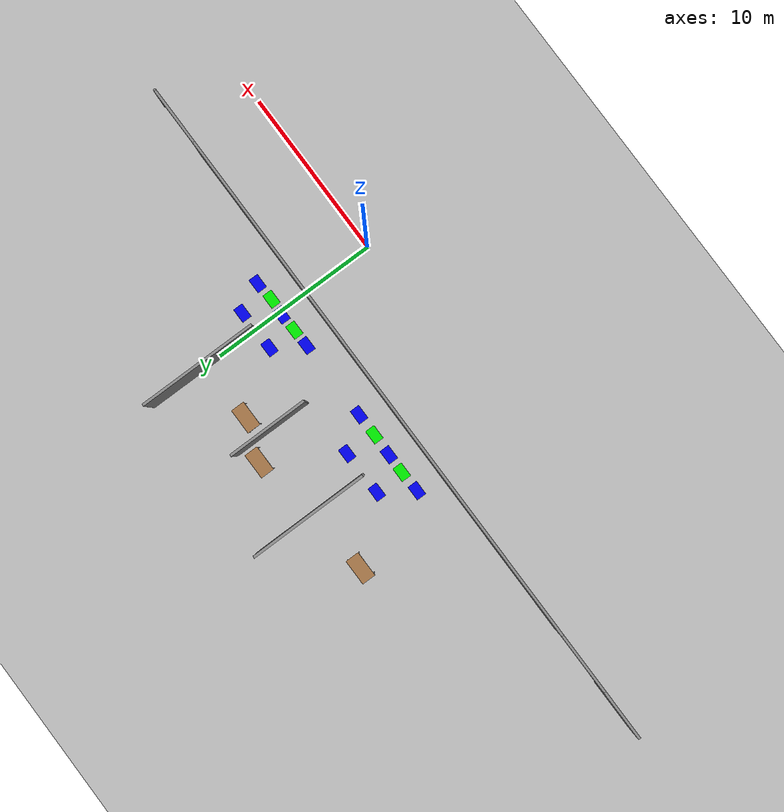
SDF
<sdf version="1.6">
 <world name="default">
  <model name="ground_plane">
   <pose>0 0 0.001 0 -0 0</pose>
   <static>1</static>
   <link name="link">
    <collision name="collision">
     <geometry><plane><normal>0 0 1</normal><size>100 100</size></plane></geometry>
     <surface><friction><ode><mu>100</mu><mu2>50</mu2></ode></friction></surface>
    </collision>
    <visual name="visual">
     <cast_shadows>0</cast_shadows>
     <geometry><plane><normal>0 0 1</normal><size>100 100</size></plane></geometry>
     <material>
      <script><uri>file://media/materials/scripts/gazebo.material</uri><name>Gazebo/Grey</name></script>
     </material>
    </visual>
   </link>
  </model>
  <model name="fin_se1f1.sdf">
   <pose>1.8125 -2.2901 0 0 -0 0</pose>
   <link name="Wall_1">
    <pose>-9.82457 6.52457 0.001 0 -0 0</pose>
    <visual name="Wall_1_Visual_0">
     <pose>-19.528 0 1.25 0 -0 0</pose>
     <geometry><box><size>2.94395 0.15 2.5</size></box></geometry>
     <material>
      <script><uri>file://media/materials/scripts/gazebo.material</uri><name>Gazebo/Grey</name></script>
      <ambient>1 1 1 1</ambient>
     </material>
     <meta><layer>0</layer></meta>
    </visual>
    <collision name="Wall_1_Collision_0">
     <geometry><box><size>2.94395 0.15 2.5</size></box></geometry>
     <pose>-19.528 0 1.25 0 -0 0</pose>
    </collision>
    <visual name="Wall_1_Visual_1">
     <pose>1.49202 0 1.25 0 -0 0</pose>
     <geometry><box><size>31.9924 0.15 2.5</size></box></geometry>
     <material>
      <script><uri>file://media/materials/scripts/gazebo.material</uri><name>Gazebo/Grey</name></script>
      <ambient>1 1 1 1</ambient>
     </material>
     <meta><layer>0</layer></meta>
    </visual>
    <collision name="Wall_1_Collision_1">
     <geometry><box><size>31.9924 0.15 2.5</size></box></geometry>
     <pose>1.49202 0 1.25 0 -0 0</pose>
    </collision>
    <visual name="Wall_1_Visual_2">
     <pose>20.9503 0 1.25 0 -0 0</pose>
     <geometry><box><size>0.099489 0.15 2.5</size></box></geometry>
     <material>
      <script><uri>file://media/materials/scripts/gazebo.material</uri><name>Gazebo/Grey</name></script>
      <ambient>1 1 1 1</ambient>
     </material>
     <meta><layer>0</layer></meta>
    </visual>
    <collision name="Wall_1_Collision_2">
     <geometry><box><size>0.099489 0.15 2.5</size></box></geometry>
     <pose>20.9503 0 1.25 0 -0 0</pose>
    </collision>
    <visual name="Wall_1_Visual_3">
     <pose>-16.2801 0 2.25 0 -0 0</pose>
     <geometry><box><size>3.55186 0.15 0.5</size></box></geometry>
     <material>
      <script><uri>file://media/materials/scripts/gazebo.material</uri><name>Gazebo/Grey</name></script>
      <ambient>1 1 1 1</ambient>
     </material>
     <meta><layer>0</layer></meta>
    </visual>
    <collision name="Wall_1_Collision_3">
     <geometry><box><size>3.55186 0.15 0.5</size></box></geometry>
     <pose>-16.2801 0 2.25 0 -0 0</pose>
    </collision>
    <visual name="Wall_1_Visual_4">
     <pose>19.1944 0 2.25 0 -0 0</pose>
     <geometry><box><size>3.41229 0.15 0.5</size></box></geometry>
     <material>
      <script><uri>file://media/materials/scripts/gazebo.material</uri><name>Gazebo/Grey</name></script>
      <ambient>1 1 1 1</ambient>
     </material>
     <meta><layer>0</layer></meta>
    </visual>
    <collision name="Wall_1_Collision_4">
     <geometry><box><size>3.41229 0.15 0.5</size></box></geometry>
     <pose>19.1944 0 2.25 0 -0 0</pose>
    </collision>
   </link>
   <link name="Wall_104">
    <collision name="Wall_104_Collision">
     <geometry><box><size>7 0.15 2.5</size></box></geometry>
     <pose>0 0 1.25 0 -0 0</pose>
    </collision>
    <visual name="Wall_104_Visual">
     <pose>0 0 1.25 0 -0 0</pose>
     <geometry><box><size>7 0.15 2.5</size></box></geometry>
     <material>
      <script><uri>file://media/materials/scripts/gazebo.material</uri><name>Gazebo/Grey</name></script>
      <ambient>1 1 1 1</ambient>
     </material>
     <meta><layer>0</layer></meta>
    </visual>
    <pose>-11.6118 13.3512 0 0 0 -1.5708</pose>
   </link>
   <link name="Wall_108">
    <collision name="Wall_108_Collision">
     <geometry><box><size>7 0.15 2.5</size></box></geometry>
     <pose>0 0 1.25 0 -0 0</pose>
    </collision>
    <visual name="Wall_108_Visual">
     <pose>0 0 1.25 0 -0 0</pose>
     <geometry><box><size>7 0.15 2.5</size></box></geometry>
     <material>
      <script><uri>file://media/materials/scripts/gazebo.material</uri><name>Gazebo/Grey</name></script>
      <ambient>1 1 1 1</ambient>
     </material>
     <meta><layer>0</layer></meta>
    </visual>
    <pose>-1.87432 13.2994 0 0 -0 1.5708</pose>
   </link>
   <link name="Wall_112">
    <collision name="Wall_112_Collision">
     <geometry><box><size>4.75 0.15 2.5</size></box></geometry>
     <pose>0 0 1.25 0 -0 0</pose>
    </collision>
    <visual name="Wall_112_Visual">
     <pose>0 0 1.25 0 -0 0</pose>
     <geometry><box><size>4.75 0.15 2.5</size></box></geometry>
     <material>
      <script><uri>file://media/materials/scripts/gazebo.material</uri><name>Gazebo/Grey</name></script>
      <ambient>1 1 1 1</ambient>
     </material>
     <meta><layer>0</layer></meta>
    </visual>
    <pose>-6.68954 12.3361 0 0 0 -1.5708</pose>
   </link>
   <static>1</static>
  </model>
  <model name="table_3">
   <static>1</static>
   <link name="link">
    <collision name="surface">
     <pose>0 0 1 0 -0 0</pose>
     <geometry><box><size>1.5 0.8 0.03</size></box></geometry>
     <surface><friction><ode><mu>0.6</mu><mu2>0.6</mu2></ode></friction></surface>
    </collision>
    <visual name="visual1">
     <pose>0 0 1 0 -0 0</pose>
     <geometry><box><size>1.5 0.8 0.03</size></box></geometry>
     <material>
      <script><uri>file://media/materials/scripts/gazebo.material</uri><name>Gazebo/Wood</name></script>
     </material>
    </visual>
    <collision name="front_left_leg">
     <pose>0.68 0.38 0.5 0 -0 0</pose>
     <geometry><cylinder><radius>0.02</radius><length>1</length></cylinder></geometry>
    </collision>
    <visual name="front_left_leg">
     <pose>0.68 0.38 0.5 0 -0 0</pose>
     <geometry><cylinder><radius>0.02</radius><length>1</length></cylinder></geometry>
     <material>
      <script><uri>file://media/materials/scripts/gazebo.material</uri><name>Gazebo/Grey</name></script>
     </material>
    </visual>
    <collision name="front_right_leg">
     <pose>0.68 -0.38 0.5 0 -0 0</pose>
     <geometry><cylinder><radius>0.02</radius><length>1</length></cylinder></geometry>
    </collision>
    <visual name="front_right_leg">
     <pose>0.68 -0.38 0.5 0 -0 0</pose>
     <geometry><cylinder><radius>0.02</radius><length>1</length></cylinder></geometry>
     <material>
      <script><uri>file://media/materials/scripts/gazebo.material</uri><name>Gazebo/Grey</name></script>
     </material>
    </visual>
    <collision name="back_right_leg">
     <pose>-0.68 -0.38 0.5 0 -0 0</pose>
     <geometry><cylinder><radius>0.02</radius><length>1</length></cylinder></geometry>
    </collision>
    <visual name="back_right_leg">
     <pose>-0.68 -0.38 0.5 0 -0 0</pose>
     <geometry><cylinder><radius>0.02</radius><length>1</length></cylinder></geometry>
     <material>
      <script><uri>file://media/materials/scripts/gazebo.material</uri><name>Gazebo/Grey</name></script>
     </material>
    </visual>
    <collision name="back_left_leg">
     <pose>-0.68 0.38 0.5 0 -0 0</pose>
     <geometry><cylinder><radius>0.02</radius><length>1</length></cylinder></geometry>
    </collision>
    <visual name="back_left_leg">
     <pose>-0.68 0.38 0.5 0 -0 0</pose>
     <geometry><cylinder><radius>0.02</radius><length>1</length></cylinder></geometry>
     <material>
      <script><uri>file://media/materials/scripts/gazebo.material</uri><name>Gazebo/Grey</name></script>
     </material>
    </visual>
   </link>
   <pose>-13.669 10.6394 0.001 0 -0 0</pose>
  </model>
  <model name="table_4">
   <static>1</static>
   <link name="link">
    <collision name="surface">
     <pose>0 0 1 0 -0 0</pose>
     <geometry><box><size>1.5 0.8 0.03</size></box></geometry>
     <surface><friction><ode><mu>0.6</mu><mu2>0.6</mu2></ode></friction></surface>
    </collision>
    <visual name="visual1">
     <pose>0 0 1 0 -0 0</pose>
     <geometry><box><size>1.5 0.8 0.03</size></box></geometry>
     <material>
      <script><uri>file://media/materials/scripts/gazebo.material</uri><name>Gazebo/Wood</name></script>
     </material>
    </visual>
    <collision name="front_left_leg">
     <pose>0.68 0.38 0.5 0 -0 0</pose>
     <geometry><cylinder><radius>0.02</radius><length>1</length></cylinder></geometry>
    </collision>
    <visual name="front_left_leg">
     <pose>0.68 0.38 0.5 0 -0 0</pose>
     <geometry><cylinder><radius>0.02</radius><length>1</length></cylinder></geometry>
     <material>
      <script><uri>file://media/materials/scripts/gazebo.material</uri><name>Gazebo/Grey</name></script>
     </material>
    </visual>
    <collision name="front_right_leg">
     <pose>0.68 -0.38 0.5 0 -0 0</pose>
     <geometry><cylinder><radius>0.02</radius><length>1</length></cylinder></geometry>
    </collision>
    <visual name="front_right_leg">
     <pose>0.68 -0.38 0.5 0 -0 0</pose>
     <geometry><cylinder><radius>0.02</radius><length>1</length></cylinder></geometry>
     <material>
      <script><uri>file://media/materials/scripts/gazebo.material</uri><name>Gazebo/Grey</name></script>
     </material>
    </visual>
    <collision name="back_right_leg">
     <pose>-0.68 -0.38 0.5 0 -0 0</pose>
     <geometry><cylinder><radius>0.02</radius><length>1</length></cylinder></geometry>
    </collision>
    <visual name="back_right_leg">
     <pose>-0.68 -0.38 0.5 0 -0 0</pose>
     <geometry><cylinder><radius>0.02</radius><length>1</length></cylinder></geometry>
     <material>
      <script><uri>file://media/materials/scripts/gazebo.material</uri><name>Gazebo/Grey</name></script>
     </material>
    </visual>
    <collision name="back_left_leg">
     <pose>-0.68 0.38 0.5 0 -0 0</pose>
     <geometry><cylinder><radius>0.02</radius><length>1</length></cylinder></geometry>
    </collision>
    <visual name="back_left_leg">
     <pose>-0.68 0.38 0.5 0 -0 0</pose>
     <geometry><cylinder><radius>0.02</radius><length>1</length></cylinder></geometry>
     <material>
      <script><uri>file://media/materials/scripts/gazebo.material</uri><name>Gazebo/Grey</name></script>
     </material>
    </visual>
   </link>
   <pose>-5.96358 11.6077 0.001 0 -0 0</pose>
  </model>
  <model name="table_7">
   <static>1</static>
   <link name="link">
    <collision name="surface">
     <pose>0 0 1 0 -0 0</pose>
     <geometry><box><size>1.5 0.8 0.03</size></box></geometry>
     <surface><friction><ode><mu>0.6</mu><mu2>0.6</mu2></ode></friction></surface>
    </collision>
    <visual name="visual1">
     <pose>0 0 1 0 -0 0</pose>
     <geometry><box><size>1.5 0.8 0.03</size></box></geometry>
     <material>
      <script><uri>file://media/materials/scripts/gazebo.material</uri><name>Gazebo/Wood</name></script>
     </material>
    </visual>
    <collision name="front_left_leg">
     <pose>0.68 0.38 0.5 0 -0 0</pose>
     <geometry><cylinder><radius>0.02</radius><length>1</length></cylinder></geometry>
    </collision>
    <visual name="front_left_leg">
     <pose>0.68 0.38 0.5 0 -0 0</pose>
     <geometry><cylinder><radius>0.02</radius><length>1</length></cylinder></geometry>
     <material>
      <script><uri>file://media/materials/scripts/gazebo.material</uri><name>Gazebo/Grey</name></script>
     </material>
    </visual>
    <collision name="front_right_leg">
     <pose>0.68 -0.38 0.5 0 -0 0</pose>
     <geometry><cylinder><radius>0.02</radius><length>1</length></cylinder></geometry>
    </collision>
    <visual name="front_right_leg">
     <pose>0.68 -0.38 0.5 0 -0 0</pose>
     <geometry><cylinder><radius>0.02</radius><length>1</length></cylinder></geometry>
     <material>
      <script><uri>file://media/materials/scripts/gazebo.material</uri><name>Gazebo/Grey</name></script>
     </material>
    </visual>
    <collision name="back_right_leg">
     <pose>-0.68 -0.38 0.5 0 -0 0</pose>
     <geometry><cylinder><radius>0.02</radius><length>1</length></cylinder></geometry>
    </collision>
    <visual name="back_right_leg">
     <pose>-0.68 -0.38 0.5 0 -0 0</pose>
     <geometry><cylinder><radius>0.02</radius><length>1</length></cylinder></geometry>
     <material>
      <script><uri>file://media/materials/scripts/gazebo.material</uri><name>Gazebo/Grey</name></script>
     </material>
    </visual>
    <collision name="back_left_leg">
     <pose>-0.68 0.38 0.5 0 -0 0</pose>
     <geometry><cylinder><radius>0.02</radius><length>1</length></cylinder></geometry>
    </collision>
    <visual name="back_left_leg">
     <pose>-0.68 0.38 0.5 0 -0 0</pose>
     <geometry><cylinder><radius>0.02</radius><length>1</length></cylinder></geometry>
     <material>
      <script><uri>file://media/materials/scripts/gazebo.material</uri><name>Gazebo/Grey</name></script>
     </material>
    </visual>
   </link>
   <pose>-3.62145 10.7656 0.001 0 -0 0</pose>
  </model>
  <model name="corridor_14">
   <link name="link">
    <pose>0 0 0.001 0 -0 0</pose>
    <inertial>
     <mass>0.0352517</mass>
     <inertia>
      <ixx>0.00099707</ixx>
      <ixy>0</ixy>
      <ixz>0</ixz>
      <iyy>0.00220147</iyy>
      <iyz>0</iyz>
      <izz>0.0031692</izz>
     </inertia>
     <pose>0 0 0.001 0 -0 0</pose>
    </inertial>
    <visual name="visual">
     <geometry><box><size>0.862743 0.578289 1e-06</size></box></geometry>
     <material>
      <script><name>Gazebo/Grey</name><uri>file://media/materials/scripts/gazebo.material</uri></script>
      <ambient>0 1 0 1</ambient>
      <diffuse>0 1 0 1</diffuse>
      <specular>0 1 0 1</specular>
      <emissive>0 1 0 1</emissive>
      <shader type="vertex"><normal_map>__default__</normal_map></shader>
     </material>
     <pose>0 0 0.001 0 -0 0</pose>
    </visual>
    <collision name="collision">
     <pose>0 0 0.001 0 -0 0</pose>
     <geometry><box><size>0.862743 0.578289 0.000477</size></box></geometry>
     <surface>
      <friction>
       <ode><mu>1</mu><mu2>1</mu2><fdir1>0 0 0</fdir1><slip1>0</slip1><slip2>0</slip2></ode>
       <torsional>
        <coefficient>1</coefficient>
        <patch_radius>0</patch_radius>
        <surface_radius>0</surface_radius>
        <use_patch_radius>1</use_patch_radius>
        <ode><slip>0</slip></ode>
       </torsional>
      </friction>
      <bounce><restitution_coefficient>0</restitution_coefficient><threshold>1e+06</threshold></bounce>
      <contact>
       <collide_without_contact>0</collide_without_contact>
       <collide_without_contact_bitmask>1</collide_without_contact_bitmask>
       <collide_bitmask>1</collide_bitmask>
       <ode>
        <soft_cfm>0</soft_cfm>
        <soft_erp>0.2</soft_erp>
        <kp>1e+13</kp>
        <kd>1</kd>
        <max_vel>0.01</max_vel>
        <min_depth>0</min_depth>
       </ode>
       <bullet>
        <split_impulse>1</split_impulse>
        <split_impulse_penetration_threshold>-0.01</split_impulse_penetration_threshold>
        <soft_cfm>0</soft_cfm>
        <soft_erp>0.2</soft_erp>
        <kp>1e+13</kp>
        <kd>1</kd>
       </bullet>
      </contact>
     </surface>
    </collision>
   </link>
   <static>1</static>
   <pose>0.836672 5.91312 0 0 -0 0</pose>
  </model>
  <model name="intersection_24">
   <link name="link">
    <pose>0 0 0.001 0 -0 0</pose>
    <inertial>
     <mass>0.0352517</mass>
     <inertia>
      <ixx>0.000997067</ixx>
      <ixy>0</ixy>
      <ixz>0</ixz>
      <iyy>0.00220147</iyy>
      <iyz>0</iyz>
      <izz>0.0031692</izz>
     </inertia>
     <pose>0 0 0.001 0 -0 0</pose>
    </inertial>
    <visual name="visual">
     <geometry><box><size>0.862743 0.578289 1e-06</size></box></geometry>
     <material>
      <script><name>Gazebo/Grey</name><uri>file://media/materials/scripts/gazebo.material</uri></script>
      <ambient>0 0 1 1</ambient>
      <diffuse>0 0 1 1</diffuse>
      <specular>0 0 1 1</specular>
      <emissive>0 0 1 1</emissive>
      <shader type="vertex"><normal_map>__default__</normal_map></shader>
     </material>
     <pose>0 0 0.001 0 -0 0</pose>
    </visual>
    <collision name="collision">
     <pose>0 0 0.001 0 -0 0</pose>
     <geometry><box><size>0.862743 0.578289 0.000477</size></box></geometry>
     <surface>
      <friction>
       <ode><mu>1</mu><mu2>1</mu2><fdir1>0 0 0</fdir1><slip1>0</slip1><slip2>0</slip2></ode>
       <torsional>
        <coefficient>1</coefficient>
        <patch_radius>0</patch_radius>
        <surface_radius>0</surface_radius>
        <use_patch_radius>1</use_patch_radius>
        <ode><slip>0</slip></ode>
       </torsional>
      </friction>
      <bounce><restitution_coefficient>0</restitution_coefficient><threshold>1e+06</threshold></bounce>
      <contact>
       <collide_without_contact>0</collide_without_contact>
       <collide_without_contact_bitmask>1</collide_without_contact_bitmask>
       <collide_bitmask>1</collide_bitmask>
       <ode>
        <soft_cfm>0</soft_cfm>
        <soft_erp>0.2</soft_erp>
        <kp>1e+13</kp>
        <kd>1</kd>
        <max_vel>0.01</max_vel>
        <min_depth>0</min_depth>
       </ode>
       <bullet>
        <split_impulse>1</split_impulse>
        <split_impulse_penetration_threshold>-0.01</split_impulse_penetration_threshold>
        <soft_cfm>0</soft_cfm>
        <soft_erp>0.2</soft_erp>
        <kp>1e+13</kp>
        <kd>1</kd>
       </bullet>
      </contact>
     </surface>
    </collision>
   </link>
   <static>1</static>
   <pose>1.17098 7.63734 0 0 -0 0</pose>
  </model>
  <model name="corridor_15">
   <link name="link">
    <pose>0 0 0.001 0 -0 0</pose>
    <inertial>
     <mass>0.0352517</mass>
     <inertia>
      <ixx>0.00099707</ixx>
      <ixy>0</ixy>
      <ixz>0</ixz>
      <iyy>0.00220147</iyy>
      <iyz>0</iyz>
      <izz>0.0031692</izz>
     </inertia>
     <pose>0 0 0.001 0 -0 0</pose>
    </inertial>
    <visual name="visual">
     <geometry><box><size>0.862743 0.578289 1e-06</size></box></geometry>
     <material>
      <script><name>Gazebo/Grey</name><uri>file://media/materials/scripts/gazebo.material</uri></script>
      <ambient>0 1 0 1</ambient>
      <diffuse>0 1 0 1</diffuse>
      <specular>0 1 0 1</specular>
      <emissive>0 1 0 1</emissive>
      <shader type="vertex"><normal_map>__default__</normal_map></shader>
     </material>
     <pose>0 0 0.001 0 -0 0</pose>
    </visual>
    <collision name="collision">
     <pose>0 0 0.001 0 -0 0</pose>
     <geometry><box><size>0.862743 0.578289 0.000477</size></box></geometry>
     <surface>
      <friction>
       <ode><mu>1</mu><mu2>1</mu2><fdir1>0 0 0</fdir1><slip1>0</slip1><slip2>0</slip2></ode>
       <torsional>
        <coefficient>1</coefficient>
        <patch_radius>0</patch_radius>
        <surface_radius>0</surface_radius>
        <use_patch_radius>1</use_patch_radius>
        <ode><slip>0</slip></ode>
       </torsional>
      </friction>
      <bounce><restitution_coefficient>0</restitution_coefficient><threshold>1e+06</threshold></bounce>
      <contact>
       <collide_without_contact>0</collide_without_contact>
       <collide_without_contact_bitmask>1</collide_without_contact_bitmask>
       <collide_bitmask>1</collide_bitmask>
       <ode>
        <soft_cfm>0</soft_cfm>
        <soft_erp>0.2</soft_erp>
        <kp>1e+13</kp>
        <kd>1</kd>
        <max_vel>0.01</max_vel>
        <min_depth>0</min_depth>
       </ode>
       <bullet>
        <split_impulse>1</split_impulse>
        <split_impulse_penetration_threshold>-0.01</split_impulse_penetration_threshold>
        <soft_cfm>0</soft_cfm>
        <soft_erp>0.2</soft_erp>
        <kp>1e+13</kp>
        <kd>1</kd>
       </bullet>
      </contact>
     </surface>
    </collision>
   </link>
   <static>1</static>
   <pose>-1.26953 5.9228 0 0 -0 0</pose>
  </model>
  <model name="intersection_25">
   <link name="link">
    <pose>0 0 0.001 0 -0 0</pose>
    <inertial>
     <mass>0.0352517</mass>
     <inertia>
      <ixx>0.000997067</ixx>
      <ixy>0</ixy>
      <ixz>0</ixz>
      <iyy>0.00220147</iyy>
      <iyz>0</iyz>
      <izz>0.0031692</izz>
     </inertia>
     <pose>0 0 0.001 0 -0 0</pose>
    </inertial>
    <visual name="visual">
     <geometry><box><size>0.862743 0.578289 1e-06</size></box></geometry>
     <material>
      <script><name>Gazebo/Grey</name><uri>file://media/materials/scripts/gazebo.material</uri></script>
      <ambient>0 0 1 1</ambient>
      <diffuse>0 0 1 1</diffuse>
      <specular>0 0 1 1</specular>
      <emissive>0 0 1 1</emissive>
      <shader type="vertex"><normal_map>__default__</normal_map></shader>
     </material>
     <pose>0 0 0.001 0 -0 0</pose>
    </visual>
    <collision name="collision">
     <pose>0 0 0.001 0 -0 0</pose>
     <geometry><box><size>0.862743 0.578289 0.000477</size></box></geometry>
     <surface>
      <friction>
       <ode><mu>1</mu><mu2>1</mu2><fdir1>0 0 0</fdir1><slip1>0</slip1><slip2>0</slip2></ode>
       <torsional>
        <coefficient>1</coefficient>
        <patch_radius>0</patch_radius>
        <surface_radius>0</surface_radius>
        <use_patch_radius>1</use_patch_radius>
        <ode><slip>0</slip></ode>
       </torsional>
      </friction>
      <bounce><restitution_coefficient>0</restitution_coefficient><threshold>1e+06</threshold></bounce>
      <contact>
       <collide_without_contact>0</collide_without_contact>
       <collide_without_contact_bitmask>1</collide_without_contact_bitmask>
       <collide_bitmask>1</collide_bitmask>
       <ode>
        <soft_cfm>0</soft_cfm>
        <soft_erp>0.2</soft_erp>
        <kp>1e+13</kp>
        <kd>1</kd>
        <max_vel>0.01</max_vel>
        <min_depth>0</min_depth>
       </ode>
       <bullet>
        <split_impulse>1</split_impulse>
        <split_impulse_penetration_threshold>-0.01</split_impulse_penetration_threshold>
        <soft_cfm>0</soft_cfm>
        <soft_erp>0.2</soft_erp>
        <kp>1e+13</kp>
        <kd>1</kd>
       </bullet>
      </contact>
     </surface>
    </collision>
   </link>
   <static>1</static>
   <pose>-1.23089 7.58219 0 0 -0 0</pose>
  </model>
  <model name="corridor_16">
   <link name="link">
    <pose>0 0 0.001 0 -0 0</pose>
    <inertial>
     <mass>0.0352517</mass>
     <inertia>
      <ixx>0.00099707</ixx>
      <ixy>0</ixy>
      <ixz>0</ixz>
      <iyy>0.00220147</iyy>
      <iyz>0</iyz>
      <izz>0.0031692</izz>
     </inertia>
     <pose>0 0 0.001 0 -0 0</pose>
    </inertial>
    <visual name="visual">
     <geometry><box><size>0.862743 0.578289 1e-06</size></box></geometry>
     <material>
      <script><name>Gazebo/Grey</name><uri>file://media/materials/scripts/gazebo.material</uri></script>
      <ambient>0 1 0 1</ambient>
      <diffuse>0 1 0 1</diffuse>
      <specular>0 1 0 1</specular>
      <emissive>0 1 0 1</emissive>
      <shader type="vertex"><normal_map>__default__</normal_map></shader>
     </material>
     <pose>0 0 0.001 0 -0 0</pose>
    </visual>
    <collision name="collision">
     <pose>0 0 0.001 0 -0 0</pose>
     <geometry><box><size>0.862743 0.578289 0.000477</size></box></geometry>
     <surface>
      <friction>
       <ode><mu>1</mu><mu2>1</mu2><fdir1>0 0 0</fdir1><slip1>0</slip1><slip2>0</slip2></ode>
       <torsional>
        <coefficient>1</coefficient>
        <patch_radius>0</patch_radius>
        <surface_radius>0</surface_radius>
        <use_patch_radius>1</use_patch_radius>
        <ode><slip>0</slip></ode>
       </torsional>
      </friction>
      <bounce><restitution_coefficient>0</restitution_coefficient><threshold>1e+06</threshold></bounce>
      <contact>
       <collide_without_contact>0</collide_without_contact>
       <collide_without_contact_bitmask>1</collide_without_contact_bitmask>
       <collide_bitmask>1</collide_bitmask>
       <ode>
        <soft_cfm>0</soft_cfm>
        <soft_erp>0.2</soft_erp>
        <kp>1e+13</kp>
        <kd>1</kd>
        <max_vel>0.01</max_vel>
        <min_depth>0</min_depth>
       </ode>
       <bullet>
        <split_impulse>1</split_impulse>
        <split_impulse_penetration_threshold>-0.01</split_impulse_penetration_threshold>
        <soft_cfm>0</soft_cfm>
        <soft_erp>0.2</soft_erp>
        <kp>1e+13</kp>
        <kd>1</kd>
       </bullet>
      </contact>
     </surface>
    </collision>
   </link>
   <static>1</static>
   <pose>-8.44268 5.83848 0 0 -0 0</pose>
  </model>
  <model name="intersection_26">
   <link name="link">
    <pose>0 0 0.001 0 -0 0</pose>
    <inertial>
     <mass>0.0352517</mass>
     <inertia>
      <ixx>0.000997067</ixx>
      <ixy>0</ixy>
      <ixz>0</ixz>
      <iyy>0.00220147</iyy>
      <iyz>0</iyz>
      <izz>0.0031692</izz>
     </inertia>
     <pose>0 0 0.001 0 -0 0</pose>
    </inertial>
    <visual name="visual">
     <geometry><box><size>0.862743 0.578289 1e-06</size></box></geometry>
     <material>
      <script><name>Gazebo/Grey</name><uri>file://media/materials/scripts/gazebo.material</uri></script>
      <ambient>0 0 1 1</ambient>
      <diffuse>0 0 1 1</diffuse>
      <specular>0 0 1 1</specular>
      <emissive>0 0 1 1</emissive>
      <shader type="vertex"><normal_map>__default__</normal_map></shader>
     </material>
     <pose>0 0 0.001 0 -0 0</pose>
    </visual>
    <collision name="collision">
     <pose>0 0 0.001 0 -0 0</pose>
     <geometry><box><size>0.862743 0.578289 0.000477</size></box></geometry>
     <surface>
      <friction>
       <ode><mu>1</mu><mu2>1</mu2><fdir1>0 0 0</fdir1><slip1>0</slip1><slip2>0</slip2></ode>
       <torsional>
        <coefficient>1</coefficient>
        <patch_radius>0</patch_radius>
        <surface_radius>0</surface_radius>
        <use_patch_radius>1</use_patch_radius>
        <ode><slip>0</slip></ode>
       </torsional>
      </friction>
      <bounce><restitution_coefficient>0</restitution_coefficient><threshold>1e+06</threshold></bounce>
      <contact>
       <collide_without_contact>0</collide_without_contact>
       <collide_without_contact_bitmask>1</collide_without_contact_bitmask>
       <collide_bitmask>1</collide_bitmask>
       <ode>
        <soft_cfm>0</soft_cfm>
        <soft_erp>0.2</soft_erp>
        <kp>1e+13</kp>
        <kd>1</kd>
        <max_vel>0.01</max_vel>
        <min_depth>0</min_depth>
       </ode>
       <bullet>
        <split_impulse>1</split_impulse>
        <split_impulse_penetration_threshold>-0.01</split_impulse_penetration_threshold>
        <soft_cfm>0</soft_cfm>
        <soft_erp>0.2</soft_erp>
        <kp>1e+13</kp>
        <kd>1</kd>
       </bullet>
      </contact>
     </surface>
    </collision>
   </link>
   <static>1</static>
   <pose>-8.37543 7.62641 0 0 -0 0</pose>
  </model>
  <model name="corridor_17">
   <link name="link">
    <pose>0 0 0.001 0 -0 0</pose>
    <inertial>
     <mass>0.0352517</mass>
     <inertia>
      <ixx>0.00099707</ixx>
      <ixy>0</ixy>
      <ixz>0</ixz>
      <iyy>0.00220147</iyy>
      <iyz>0</iyz>
      <izz>0.0031692</izz>
     </inertia>
     <pose>0 0 0.001 0 -0 0</pose>
    </inertial>
    <visual name="visual">
     <geometry><box><size>0.862743 0.578289 1e-06</size></box></geometry>
     <material>
      <script><name>Gazebo/Grey</name><uri>file://media/materials/scripts/gazebo.material</uri></script>
      <ambient>0 1 0 1</ambient>
      <diffuse>0 1 0 1</diffuse>
      <specular>0 1 0 1</specular>
      <emissive>0 1 0 1</emissive>
      <shader type="vertex"><normal_map>__default__</normal_map></shader>
     </material>
     <pose>0 0 0.001 0 -0 0</pose>
    </visual>
    <collision name="collision">
     <pose>0 0 0.001 0 -0 0</pose>
     <geometry><box><size>0.862743 0.578289 0.000477</size></box></geometry>
     <surface>
      <friction>
       <ode><mu>1</mu><mu2>1</mu2><fdir1>0 0 0</fdir1><slip1>0</slip1><slip2>0</slip2></ode>
       <torsional>
        <coefficient>1</coefficient>
        <patch_radius>0</patch_radius>
        <surface_radius>0</surface_radius>
        <use_patch_radius>1</use_patch_radius>
        <ode><slip>0</slip></ode>
       </torsional>
      </friction>
      <bounce><restitution_coefficient>0</restitution_coefficient><threshold>1e+06</threshold></bounce>
      <contact>
       <collide_without_contact>0</collide_without_contact>
       <collide_without_contact_bitmask>1</collide_without_contact_bitmask>
       <collide_bitmask>1</collide_bitmask>
       <ode>
        <soft_cfm>0</soft_cfm>
        <soft_erp>0.2</soft_erp>
        <kp>1e+13</kp>
        <kd>1</kd>
        <max_vel>0.01</max_vel>
        <min_depth>0</min_depth>
       </ode>
       <bullet>
        <split_impulse>1</split_impulse>
        <split_impulse_penetration_threshold>-0.01</split_impulse_penetration_threshold>
        <soft_cfm>0</soft_cfm>
        <soft_erp>0.2</soft_erp>
        <kp>1e+13</kp>
        <kd>1</kd>
       </bullet>
      </contact>
     </surface>
    </collision>
   </link>
   <static>1</static>
   <pose>-10.9538 5.86455 0 0 -0 0</pose>
  </model>
  <model name="intersection_27">
   <link name="link">
    <pose>0 0 0.001 0 -0 0</pose>
    <inertial>
     <mass>0.0352517</mass>
     <inertia>
      <ixx>0.000997067</ixx>
      <ixy>0</ixy>
      <ixz>0</ixz>
      <iyy>0.00220147</iyy>
      <iyz>0</iyz>
      <izz>0.0031692</izz>
     </inertia>
     <pose>0 0 0.001 0 -0 0</pose>
    </inertial>
    <visual name="visual">
     <geometry><box><size>0.862743 0.578289 1e-06</size></box></geometry>
     <material>
      <script><name>Gazebo/Grey</name><uri>file://media/materials/scripts/gazebo.material</uri></script>
      <ambient>0 0 1 1</ambient>
      <diffuse>0 0 1 1</diffuse>
      <specular>0 0 1 1</specular>
      <emissive>0 0 1 1</emissive>
      <shader type="vertex"><normal_map>__default__</normal_map></shader>
     </material>
     <pose>0 0 0.001 0 -0 0</pose>
    </visual>
    <collision name="collision">
     <pose>0 0 0.001 0 -0 0</pose>
     <geometry><box><size>0.862743 0.578289 0.000477</size></box></geometry>
     <surface>
      <friction>
       <ode><mu>1</mu><mu2>1</mu2><fdir1>0 0 0</fdir1><slip1>0</slip1><slip2>0</slip2></ode>
       <torsional>
        <coefficient>1</coefficient>
        <patch_radius>0</patch_radius>
        <surface_radius>0</surface_radius>
        <use_patch_radius>1</use_patch_radius>
        <ode><slip>0</slip></ode>
       </torsional>
      </friction>
      <bounce><restitution_coefficient>0</restitution_coefficient><threshold>1e+06</threshold></bounce>
      <contact>
       <collide_without_contact>0</collide_without_contact>
       <collide_without_contact_bitmask>1</collide_without_contact_bitmask>
       <collide_bitmask>1</collide_bitmask>
       <ode>
        <soft_cfm>0</soft_cfm>
        <soft_erp>0.2</soft_erp>
        <kp>1e+13</kp>
        <kd>1</kd>
        <max_vel>0.01</max_vel>
        <min_depth>0</min_depth>
       </ode>
       <bullet>
        <split_impulse>1</split_impulse>
        <split_impulse_penetration_threshold>-0.01</split_impulse_penetration_threshold>
        <soft_cfm>0</soft_cfm>
        <soft_erp>0.2</soft_erp>
        <kp>1e+13</kp>
        <kd>1</kd>
       </bullet>
      </contact>
     </surface>
    </collision>
   </link>
   <static>1</static>
   <pose>-11.0097 7.58955 0 0 -0 0</pose>
  </model>
  <model name="intersection_43">
   <link name="link">
    <pose>0 0 0.001 0 -0 0</pose>
    <inertial>
     <mass>0.0352517</mass>
     <inertia>
      <ixx>0.000997067</ixx>
      <ixy>0</ixy>
      <ixz>0</ixz>
      <iyy>0.00220147</iyy>
      <iyz>0</iyz>
      <izz>0.0031692</izz>
     </inertia>
     <pose>0 0 0.001 0 -0 0</pose>
    </inertial>
    <visual name="visual">
     <geometry><box><size>0.862743 0.578289 1e-06</size></box></geometry>
     <material>
      <script><name>Gazebo/Grey</name><uri>file://media/materials/scripts/gazebo.material</uri></script>
      <ambient>0 0 1 1</ambient>
      <diffuse>0 0 1 1</diffuse>
      <specular>0 0 1 1</specular>
      <emissive>0 0 1 1</emissive>
      <shader type="vertex"><normal_map>__default__</normal_map></shader>
     </material>
     <pose>0 0 0.001 0 -0 0</pose>
    </visual>
    <collision name="collision">
     <pose>0 0 0.001 0 -0 0</pose>
     <geometry><box><size>0.862743 0.578289 0.000477</size></box></geometry>
     <surface>
      <friction>
       <ode><mu>1</mu><mu2>1</mu2><fdir1>0 0 0</fdir1><slip1>0</slip1><slip2>0</slip2></ode>
       <torsional>
        <coefficient>1</coefficient>
        <patch_radius>0</patch_radius>
        <surface_radius>0</surface_radius>
        <use_patch_radius>1</use_patch_radius>
        <ode><slip>0</slip></ode>
       </torsional>
      </friction>
      <bounce><restitution_coefficient>0</restitution_coefficient><threshold>1e+06</threshold></bounce>
      <contact>
       <collide_without_contact>0</collide_without_contact>
       <collide_without_contact_bitmask>1</collide_without_contact_bitmask>
       <collide_bitmask>1</collide_bitmask>
       <ode>
        <soft_cfm>0</soft_cfm>
        <soft_erp>0.2</soft_erp>
        <kp>1e+13</kp>
        <kd>1</kd>
        <max_vel>0.01</max_vel>
        <min_depth>0</min_depth>
       </ode>
       <bullet>
        <split_impulse>1</split_impulse>
        <split_impulse_penetration_threshold>-0.01</split_impulse_penetration_threshold>
        <soft_cfm>0</soft_cfm>
        <soft_erp>0.2</soft_erp>
        <kp>1e+13</kp>
        <kd>1</kd>
       </bullet>
      </contact>
     </surface>
    </collision>
   </link>
   <static>1</static>
   <pose>-12.2352 5.80021 0 0 -0 0</pose>
  </model>
  <model name="intersection_44">
   <link name="link">
    <pose>0 0 0.001 0 -0 0</pose>
    <inertial>
     <mass>0.0352517</mass>
     <inertia>
      <ixx>0.000997067</ixx>
      <ixy>0</ixy>
      <ixz>0</ixz>
      <iyy>0.00220147</iyy>
      <iyz>0</iyz>
      <izz>0.0031692</izz>
     </inertia>
     <pose>0 0 0.001 0 -0 0</pose>
    </inertial>
    <visual name="visual">
     <geometry><box><size>0.862743 0.578289 1e-06</size></box></geometry>
     <material>
      <script><name>Gazebo/Grey</name><uri>file://media/materials/scripts/gazebo.material</uri></script>
      <ambient>0 0 1 1</ambient>
      <diffuse>0 0 1 1</diffuse>
      <specular>0 0 1 1</specular>
      <emissive>0 0 1 1</emissive>
      <shader type="vertex"><normal_map>__default__</normal_map></shader>
     </material>
     <pose>0 0 0.001 0 -0 0</pose>
    </visual>
    <collision name="collision">
     <pose>0 0 0.001 0 -0 0</pose>
     <geometry><box><size>0.862743 0.578289 0.000477</size></box></geometry>
     <surface>
      <friction>
       <ode><mu>1</mu><mu2>1</mu2><fdir1>0 0 0</fdir1><slip1>0</slip1><slip2>0</slip2></ode>
       <torsional>
        <coefficient>1</coefficient>
        <patch_radius>0</patch_radius>
        <surface_radius>0</surface_radius>
        <use_patch_radius>1</use_patch_radius>
        <ode><slip>0</slip></ode>
       </torsional>
      </friction>
      <bounce><restitution_coefficient>0</restitution_coefficient><threshold>1e+06</threshold></bounce>
      <contact>
       <collide_without_contact>0</collide_without_contact>
       <collide_without_contact_bitmask>1</collide_without_contact_bitmask>
       <collide_bitmask>1</collide_bitmask>
       <ode>
        <soft_cfm>0</soft_cfm>
        <soft_erp>0.2</soft_erp>
        <kp>1e+13</kp>
        <kd>1</kd>
        <max_vel>0.01</max_vel>
        <min_depth>0</min_depth>
       </ode>
       <bullet>
        <split_impulse>1</split_impulse>
        <split_impulse_penetration_threshold>-0.01</split_impulse_penetration_threshold>
        <soft_cfm>0</soft_cfm>
        <soft_erp>0.2</soft_erp>
        <kp>1e+13</kp>
        <kd>1</kd>
       </bullet>
      </contact>
     </surface>
    </collision>
   </link>
   <static>1</static>
   <pose>-9.77897 5.8594 0 0 -0 0</pose>
  </model>
  <model name="intersection">
   <link name="link">
    <pose>0 0 0.001 0 -0 0</pose>
    <inertial>
     <mass>0.0352517</mass>
     <inertia>
      <ixx>0.000997067</ixx>
      <ixy>0</ixy>
      <ixz>0</ixz>
      <iyy>0.00220147</iyy>
      <iyz>0</iyz>
      <izz>0.0031692</izz>
     </inertia>
     <pose>0 0 0.001 0 -0 0</pose>
    </inertial>
    <visual name="visual">
     <geometry><box><size>0.862743 0.578289 1e-06</size></box></geometry>
     <material>
      <script><name>Gazebo/Grey</name><uri>file://media/materials/scripts/gazebo.material</uri></script>
      <ambient>0 0 1 1</ambient>
      <diffuse>0 0 1 1</diffuse>
      <specular>0 0 1 1</specular>
      <emissive>0 0 1 1</emissive>
      <shader type="vertex"><normal_map>__default__</normal_map></shader>
     </material>
     <pose>0 0 0.001 0 -0 0</pose>
    </visual>
    <collision name="collision">
     <pose>0 0 0.001 0 -0 0</pose>
     <geometry><box><size>0.862743 0.578289 0.000477</size></box></geometry>
     <surface>
      <friction>
       <ode><mu>1</mu><mu2>1</mu2><fdir1>0 0 0</fdir1><slip1>0</slip1><slip2>0</slip2></ode>
       <torsional>
        <coefficient>1</coefficient>
        <patch_radius>0</patch_radius>
        <surface_radius>0</surface_radius>
        <use_patch_radius>1</use_patch_radius>
        <ode><slip>0</slip></ode>
       </torsional>
      </friction>
      <bounce><restitution_coefficient>0</restitution_coefficient><threshold>1e+06</threshold></bounce>
      <contact>
       <collide_without_contact>0</collide_without_contact>
       <collide_without_contact_bitmask>1</collide_without_contact_bitmask>
       <collide_bitmask>1</collide_bitmask>
       <ode>
        <soft_cfm>0</soft_cfm>
        <soft_erp>0.2</soft_erp>
        <kp>1e+13</kp>
        <kd>1</kd>
        <max_vel>0.01</max_vel>
        <min_depth>0</min_depth>
       </ode>
       <bullet>
        <split_impulse>1</split_impulse>
        <split_impulse_penetration_threshold>-0.01</split_impulse_penetration_threshold>
        <soft_cfm>0</soft_cfm>
        <soft_erp>0.2</soft_erp>
        <kp>1e+13</kp>
        <kd>1</kd>
       </bullet>
      </contact>
     </surface>
    </collision>
   </link>
   <static>1</static>
   <pose>-7.07396 5.85445 0 0 -0 0</pose>
  </model>
  <model name="intersection_52">
   <link name="link">
    <pose>0 0 0.001 0 -0 0</pose>
    <inertial>
     <mass>0.0352517</mass>
     <inertia>
      <ixx>0.000997067</ixx>
      <ixy>0</ixy>
      <ixz>0</ixz>
      <iyy>0.00220147</iyy>
      <iyz>0</iyz>
      <izz>0.0031692</izz>
     </inertia>
     <pose>0 0 0.001 0 -0 0</pose>
    </inertial>
    <visual name="visual">
     <geometry><box><size>0.862743 0.578289 1e-06</size></box></geometry>
     <material>
      <script><name>Gazebo/Grey</name><uri>file://media/materials/scripts/gazebo.material</uri></script>
      <ambient>0 0 1 1</ambient>
      <diffuse>0 0 1 1</diffuse>
      <specular>0 0 1 1</specular>
      <emissive>0 0 1 1</emissive>
      <shader type="vertex"><normal_map>__default__</normal_map></shader>
     </material>
     <pose>0 0 0.001 0 -0 0</pose>
    </visual>
    <collision name="collision">
     <pose>0 0 0.001 0 -0 0</pose>
     <geometry><box><size>0.862743 0.578289 0.000477</size></box></geometry>
     <surface>
      <friction>
       <ode><mu>1</mu><mu2>1</mu2><fdir1>0 0 0</fdir1><slip1>0</slip1><slip2>0</slip2></ode>
       <torsional>
        <coefficient>1</coefficient>
        <patch_radius>0</patch_radius>
        <surface_radius>0</surface_radius>
        <use_patch_radius>1</use_patch_radius>
        <ode><slip>0</slip></ode>
       </torsional>
      </friction>
      <bounce><restitution_coefficient>0</restitution_coefficient><threshold>1e+06</threshold></bounce>
      <contact>
       <collide_without_contact>0</collide_without_contact>
       <collide_without_contact_bitmask>1</collide_without_contact_bitmask>
       <collide_bitmask>1</collide_bitmask>
       <ode>
        <soft_cfm>0</soft_cfm>
        <soft_erp>0.2</soft_erp>
        <kp>1e+13</kp>
        <kd>1</kd>
        <max_vel>0.01</max_vel>
        <min_depth>0</min_depth>
       </ode>
       <bullet>
        <split_impulse>1</split_impulse>
        <split_impulse_penetration_threshold>-0.01</split_impulse_penetration_threshold>
        <soft_cfm>0</soft_cfm>
        <soft_erp>0.2</soft_erp>
        <kp>1e+13</kp>
        <kd>1</kd>
       </bullet>
      </contact>
     </surface>
    </collision>
   </link>
   <static>1</static>
   <pose>-2.33917 5.8933 0 0 -0 0</pose>
  </model>
  <model name="intersection_53">
   <link name="link">
    <pose>0 0 0.001 0 -0 0</pose>
    <inertial>
     <mass>0.0352517</mass>
     <inertia>
      <ixx>0.000997067</ixx>
      <ixy>0</ixy>
      <ixz>0</ixz>
      <iyy>0.00220147</iyy>
      <iyz>0</iyz>
      <izz>0.0031692</izz>
     </inertia>
     <pose>0 0 0.001 0 -0 0</pose>
    </inertial>
    <visual name="visual">
     <geometry><box><size>0.862743 0.578289 1e-06</size></box></geometry>
     <material>
      <script><name>Gazebo/Grey</name><uri>file://media/materials/scripts/gazebo.material</uri></script>
      <ambient>0 0 1 1</ambient>
      <diffuse>0 0 1 1</diffuse>
      <specular>0 0 1 1</specular>
      <emissive>0 0 1 1</emissive>
      <shader type="vertex"><normal_map>__default__</normal_map></shader>
     </material>
     <pose>0 0 0.001 0 -0 0</pose>
    </visual>
    <collision name="collision">
     <pose>0 0 0.001 0 -0 0</pose>
     <geometry><box><size>0.862743 0.578289 0.000477</size></box></geometry>
     <surface>
      <friction>
       <ode><mu>1</mu><mu2>1</mu2><fdir1>0 0 0</fdir1><slip1>0</slip1><slip2>0</slip2></ode>
       <torsional>
        <coefficient>1</coefficient>
        <patch_radius>0</patch_radius>
        <surface_radius>0</surface_radius>
        <use_patch_radius>1</use_patch_radius>
        <ode><slip>0</slip></ode>
       </torsional>
      </friction>
      <bounce><restitution_coefficient>0</restitution_coefficient><threshold>1e+06</threshold></bounce>
      <contact>
       <collide_without_contact>0</collide_without_contact>
       <collide_without_contact_bitmask>1</collide_without_contact_bitmask>
       <collide_bitmask>1</collide_bitmask>
       <ode>
        <soft_cfm>0</soft_cfm>
        <soft_erp>0.2</soft_erp>
        <kp>1e+13</kp>
        <kd>1</kd>
        <max_vel>0.01</max_vel>
        <min_depth>0</min_depth>
       </ode>
       <bullet>
        <split_impulse>1</split_impulse>
        <split_impulse_penetration_threshold>-0.01</split_impulse_penetration_threshold>
        <soft_cfm>0</soft_cfm>
        <soft_erp>0.2</soft_erp>
        <kp>1e+13</kp>
        <kd>1</kd>
       </bullet>
      </contact>
     </surface>
    </collision>
   </link>
   <static>1</static>
   <pose>-0.194675 5.99259 0 0 -0 0</pose>
  </model>
  <model name="intersection_54">
   <link name="link">
    <pose>0 0 0.001 0 -0 0</pose>
    <inertial>
     <mass>0.0352517</mass>
     <inertia>
      <ixx>0.000997067</ixx>
      <ixy>0</ixy>
      <ixz>0</ixz>
      <iyy>0.00220147</iyy>
      <iyz>0</iyz>
      <izz>0.0031692</izz>
     </inertia>
     <pose>0 0 0.001 0 -0 0</pose>
    </inertial>
    <visual name="visual">
     <geometry><box><size>0.862743 0.578289 1e-06</size></box></geometry>
     <material>
      <script><name>Gazebo/Grey</name><uri>file://media/materials/scripts/gazebo.material</uri></script>
      <ambient>0 0 1 1</ambient>
      <diffuse>0 0 1 1</diffuse>
      <specular>0 0 1 1</specular>
      <emissive>0 0 1 1</emissive>
      <shader type="vertex"><normal_map>__default__</normal_map></shader>
     </material>
     <pose>0 0 0.001 0 -0 0</pose>
    </visual>
    <collision name="collision">
     <pose>0 0 0.001 0 -0 0</pose>
     <geometry><box><size>0.862743 0.578289 0.000477</size></box></geometry>
     <surface>
      <friction>
       <ode><mu>1</mu><mu2>1</mu2><fdir1>0 0 0</fdir1><slip1>0</slip1><slip2>0</slip2></ode>
       <torsional>
        <coefficient>1</coefficient>
        <patch_radius>0</patch_radius>
        <surface_radius>0</surface_radius>
        <use_patch_radius>1</use_patch_radius>
        <ode><slip>0</slip></ode>
       </torsional>
      </friction>
      <bounce><restitution_coefficient>0</restitution_coefficient><threshold>1e+06</threshold></bounce>
      <contact>
       <collide_without_contact>0</collide_without_contact>
       <collide_without_contact_bitmask>1</collide_without_contact_bitmask>
       <collide_bitmask>1</collide_bitmask>
       <ode>
        <soft_cfm>0</soft_cfm>
        <soft_erp>0.2</soft_erp>
        <kp>1e+13</kp>
        <kd>1</kd>
        <max_vel>0.01</max_vel>
        <min_depth>0</min_depth>
       </ode>
       <bullet>
        <split_impulse>1</split_impulse>
        <split_impulse_penetration_threshold>-0.01</split_impulse_penetration_threshold>
        <soft_cfm>0</soft_cfm>
        <soft_erp>0.2</soft_erp>
        <kp>1e+13</kp>
        <kd>1</kd>
       </bullet>
      </contact>
     </surface>
    </collision>
   </link>
   <static>1</static>
   <pose>1.97562 6.00845 0 0 -0 0</pose>
  </model>
 </world>
</sdf>
